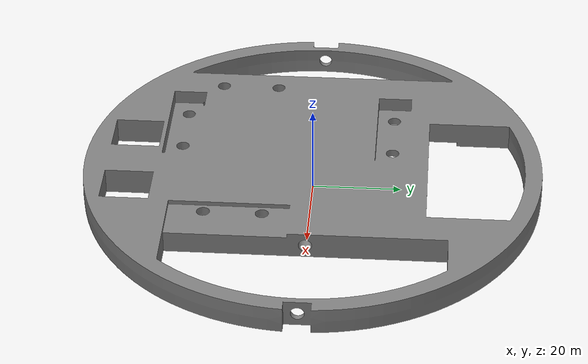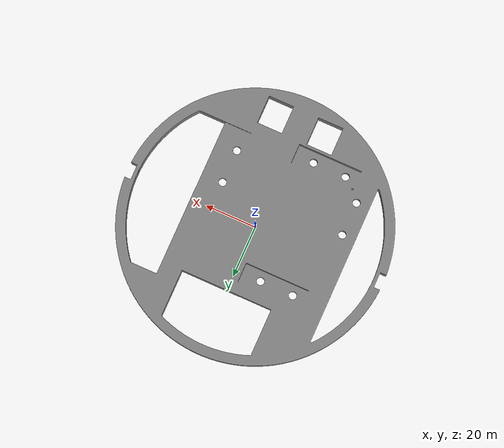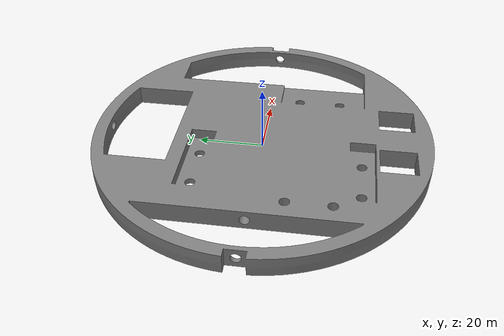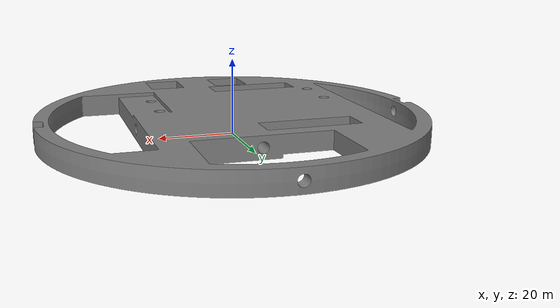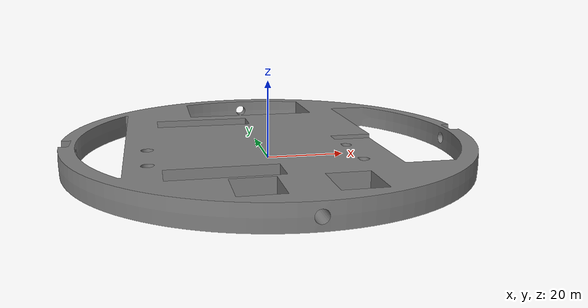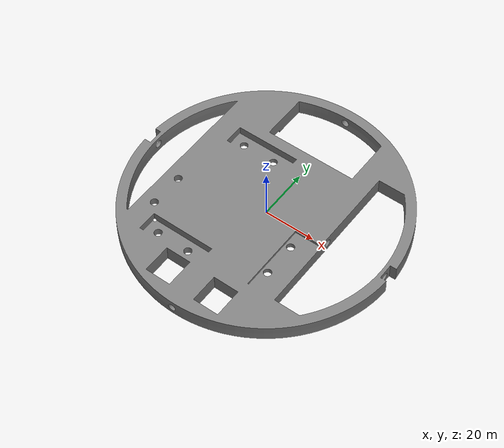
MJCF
<mujoco model="FabConvert.com_middle_wall_mount">
  <default>
    <default class="visual">
      <geom group="2" type="mesh" contype="0" conaffinity="0"/>
    </default>
    <default class="collision">
      <geom group="3" type="mesh"/>
    </default>
  </default>
  <asset>
    <mesh file="FabConvert.com_middle_wall_mount.obj"/>
  </asset>
  <worldbody>
    <body name="FabConvert.com_middle_wall_mount">
      <geom mesh="FabConvert.com_middle_wall_mount" class="visual"/>
      <geom mesh="FabConvert.com_middle_wall_mount" class="collision"/>
    </body>
  </worldbody>
</mujoco>
